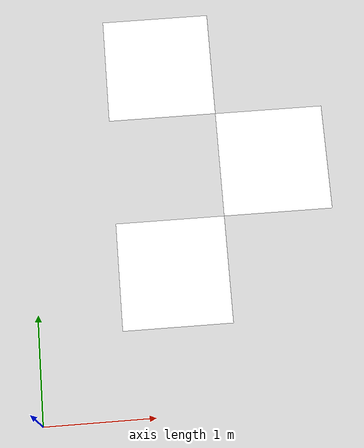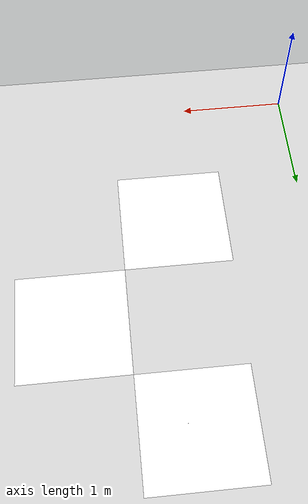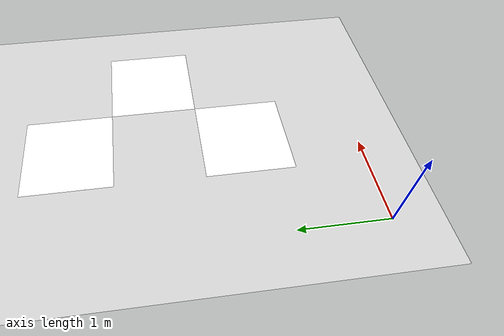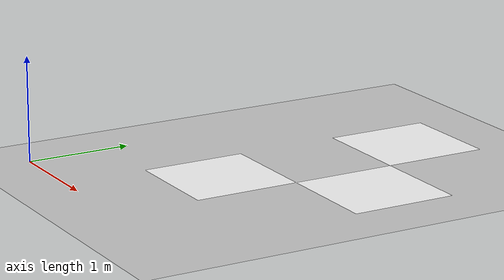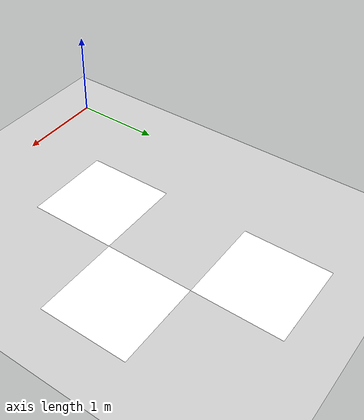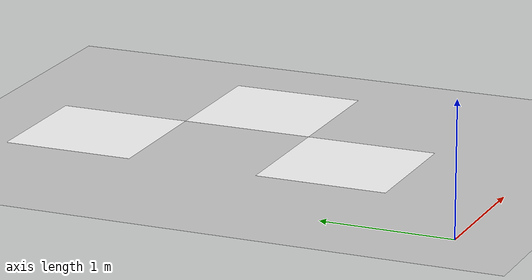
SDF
<sdf version="1.4">
 <world name="default">
  <include><uri>model://ground_plane</uri></include>
  <include><uri>model://sun</uri></include>
  <include><uri>model://ground_plane</uri></include>
  <include><uri>model://sun</uri></include>
  <model name="aruco0">
   <include><uri>model://aruco_visual_marker_0</uri></include>
   <pose>2.25 2.3 0 0 0 0</pose>
  </model>
  <model name="aruco5">
   <include><uri>model://aruco_visual_marker_5</uri></include>
   <pose>1.25 3.3 0 0 0 0</pose>
  </model>
  <model name="aruco6">
   <include><uri>model://aruco_visual_marker_6</uri></include>
   <pose>1.25 1.3 0 0 0 0</pose>
  </model>
 </world>
</sdf>

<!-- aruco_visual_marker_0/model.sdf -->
<sdf version='1.5'>
  <model name='aruco_visual_marker_0'>

    <link name='marker'>
      <pose frame=''>0 0 0 0 0 0</pose>
      <visual name='visual'>
        <geometry>
          <box>
            <size>1 1 1e-5</size>
          </box>
        </geometry>
        <material>
          <script>
            <uri>model://aruco_visual_marker_0/materials/scripts</uri>
            <uri>model://aruco_visual_marker_0/materials/textures</uri>
            <name>ArucoVisualMarker0/Marker</name>
          </script>
          <ambient>1 1 1 1</ambient>
          <diffuse>1 1 1 1</diffuse>
          <specular>0 0 0 1</specular>
          <emissive>1 1 1 0</emissive>
          <shader type='vertex'>
            <normal_map>__default__</normal_map>
          </shader>
        </material>
        <pose frame=''>0 0 0 0 -0 0</pose>
        <cast_shadows>1</cast_shadows>
        <transparency>0</transparency>
      </visual>
      <collision name='collision'>
        <laser_retro>0</laser_retro>
        <max_contacts>10</max_contacts>
        <pose frame=''>0 0 0 0 -0 0</pose>
        <geometry>
          <box>
            <size>0.1778 0.1778 1e-05</size>
          </box>
        </geometry>
      </collision>
    </link>

    <link name='marker_pad'>
      <pose frame='marker'>0 0 -1e-5 0 -0 0</pose>
      <visual name='visual'>
        <geometry>
          <box>
            <size>0.1778 0.1778 1e-5</size>
          </box>
        </geometry>
        <material>
          <lighting>1</lighting>
          <script>
            <uri>file://media/materials/scripts/gazebo.material</uri>
            <name>Gazebo/White</name>
          </script>
          <ambient>0.3 0.3 0.3 1</ambient>
          <diffuse>0.7 0.7 0.7 1</diffuse>
          <specular>0.01 0.01 0.01 1</specular>
          <emissive>1 1 1 0</emissive>
          <shader type='vertex'>
            <normal_map>__default__</normal_map>
          </shader>
        </material>
        <cast_shadows>1</cast_shadows>
        <transparency>0</transparency>
      </visual>
      <collision name='collision'>
        <laser_retro>0</laser_retro>
        <max_contacts>10</max_contacts>
        <pose frame=''>0 0 0 0 -0 0</pose>
        <geometry>
          <box>
            <size>0.1778 0.1778 1e-5</size>
          </box>
        </geometry>
      </collision>
    </link>

    <joint name='marker_JOINT_marker_pad' type='revolute'>
      <parent>marker</parent>
      <child>marker_pad</child>
      <pose frame=''>0 0 0 0 -0 0</pose>
      <axis>
        <xyz>0 0 1</xyz>
        <limit>
          <upper>0</upper>
          <lower>0</lower>
        </limit>
      </axis>
    </joint>

    <static>1</static>
    <allow_auto_disable>1</allow_auto_disable>

  </model>
</sdf>

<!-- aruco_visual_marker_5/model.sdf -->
<sdf version='1.5'>
  <model name='aruco_visual_marker_5'>

    <link name='marker'>
      <pose frame=''>0 0 0 0 0 0</pose>
      <visual name='visual'>
        <geometry>
          <box>
            <size>1 1 1e-5</size>
          </box>
        </geometry>
        <material>
          <script>
            <uri>model://aruco_visual_marker_5/materials/scripts</uri>
            <uri>model://aruco_visual_marker_5/materials/textures</uri>
            <name>ArucoVisualMarker5/Marker</name>
          </script>
          <ambient>1 1 1 1</ambient>
          <diffuse>1 1 1 1</diffuse>
          <specular>0 0 0 1</specular>
          <emissive>1 1 1 0</emissive>
          <shader type='vertex'>
            <normal_map>__default__</normal_map>
          </shader>
        </material>
        <pose frame=''>0 0 0 0 -0 0</pose>
        <cast_shadows>1</cast_shadows>
        <transparency>0</transparency>
      </visual>
      <collision name='collision'>
        <laser_retro>0</laser_retro>
        <max_contacts>10</max_contacts>
        <pose frame=''>0 0 0 0 -0 0</pose>
        <geometry>
          <box>
            <size>0.1778 0.1778 1e-05</size>
          </box>
        </geometry>
      </collision>
    </link>

    <link name='marker_pad'>
      <pose frame='marker'>0 0 -1e-5 0 -0 0</pose>
      <visual name='visual'>
        <geometry>
          <box>
            <size>0.1778 0.1778 1e-5</size>
          </box>
        </geometry>
        <material>
          <lighting>1</lighting>
          <script>
            <uri>file://media/materials/scripts/gazebo.material</uri>
            <name>Gazebo/White</name>
          </script>
          <ambient>0.3 0.3 0.3 1</ambient>
          <diffuse>0.7 0.7 0.7 1</diffuse>
          <specular>0.01 0.01 0.01 1</specular>
          <emissive>1 1 1 0</emissive>
          <shader type='vertex'>
            <normal_map>__default__</normal_map>
          </shader>
        </material>
        <cast_shadows>1</cast_shadows>
        <transparency>0</transparency>
      </visual>
      <collision name='collision'>
        <laser_retro>0</laser_retro>
        <max_contacts>10</max_contacts>
        <pose frame=''>0 0 0 0 -0 0</pose>
        <geometry>
          <box>
            <size>0.1778 0.1778 1e-5</size>
          </box>
        </geometry>
      </collision>
    </link>

    <joint name='marker_JOINT_marker_pad' type='revolute'>
      <parent>marker</parent>
      <child>marker_pad</child>
      <pose frame=''>0 0 0 0 -0 0</pose>
      <axis>
        <xyz>0 0 1</xyz>
        <limit>
          <upper>0</upper>
          <lower>0</lower>
        </limit>
      </axis>
    </joint>

    <static>1</static>
    <allow_auto_disable>1</allow_auto_disable>

  </model>
</sdf>

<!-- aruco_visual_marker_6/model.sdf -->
<sdf version='1.5'>
  <model name='aruco_visual_marker_6'>

    <link name='marker'>
      <pose frame=''>0 0 0 0 0 0</pose>
      <visual name='visual'>
        <geometry>
          <box>
            <size>1 1 1e-5</size>
          </box>
        </geometry>
        <material>
          <script>
            <uri>model://aruco_visual_marker_6/materials/scripts</uri>
            <uri>model://aruco_visual_marker_6/materials/textures</uri>
            <name>ArucoVisualMarker6/Marker</name>
          </script>
          <ambient>1 1 1 1</ambient>
          <diffuse>1 1 1 1</diffuse>
          <specular>0 0 0 1</specular>
          <emissive>1 1 1 0</emissive>
          <shader type='vertex'>
            <normal_map>__default__</normal_map>
          </shader>
        </material>
        <pose frame=''>0 0 0 0 -0 0</pose>
        <cast_shadows>1</cast_shadows>
        <transparency>0</transparency>
      </visual>
      <collision name='collision'>
        <laser_retro>0</laser_retro>
        <max_contacts>10</max_contacts>
        <pose frame=''>0 0 0 0 -0 0</pose>
        <geometry>
          <box>
            <size>0.1778 0.1778 1e-05</size>
          </box>
        </geometry>
      </collision>
    </link>

    <link name='marker_pad'>
      <pose frame='marker'>0 0 -1e-5 0 -0 0</pose>
      <visual name='visual'>
        <geometry>
          <box>
            <size>0.1778 0.1778 1e-5</size>
          </box>
        </geometry>
        <material>
          <lighting>1</lighting>
          <script>
            <uri>file://media/materials/scripts/gazebo.material</uri>
            <name>Gazebo/White</name>
          </script>
          <ambient>0.3 0.3 0.3 1</ambient>
          <diffuse>0.7 0.7 0.7 1</diffuse>
          <specular>0.01 0.01 0.01 1</specular>
          <emissive>1 1 1 0</emissive>
          <shader type='vertex'>
            <normal_map>__default__</normal_map>
          </shader>
        </material>
        <cast_shadows>1</cast_shadows>
        <transparency>0</transparency>
      </visual>
      <collision name='collision'>
        <laser_retro>0</laser_retro>
        <max_contacts>10</max_contacts>
        <pose frame=''>0 0 0 0 -0 0</pose>
        <geometry>
          <box>
            <size>0.1778 0.1778 1e-5</size>
          </box>
        </geometry>
      </collision>
    </link>

    <joint name='marker_JOINT_marker_pad' type='revolute'>
      <parent>marker</parent>
      <child>marker_pad</child>
      <pose frame=''>0 0 0 0 -0 0</pose>
      <axis>
        <xyz>0 0 1</xyz>
        <limit>
          <upper>0</upper>
          <lower>0</lower>
        </limit>
      </axis>
    </joint>

    <static>1</static>
    <allow_auto_disable>1</allow_auto_disable>

  </model>
</sdf>
